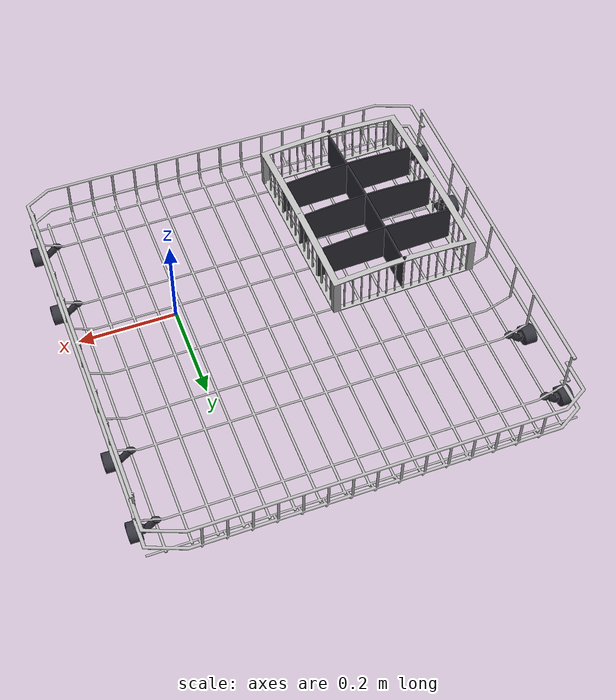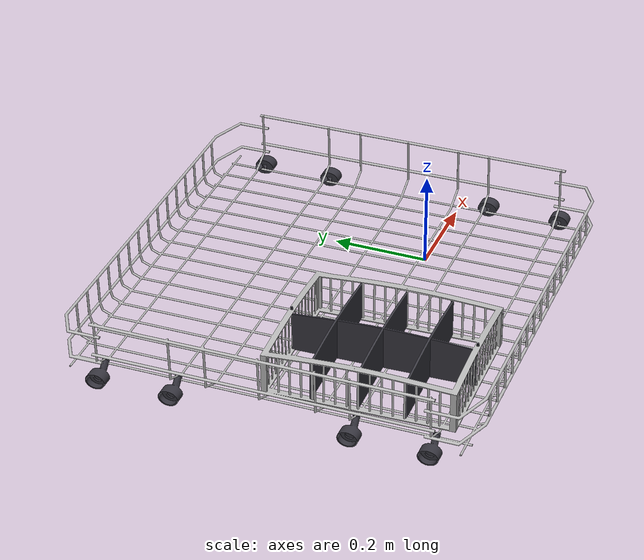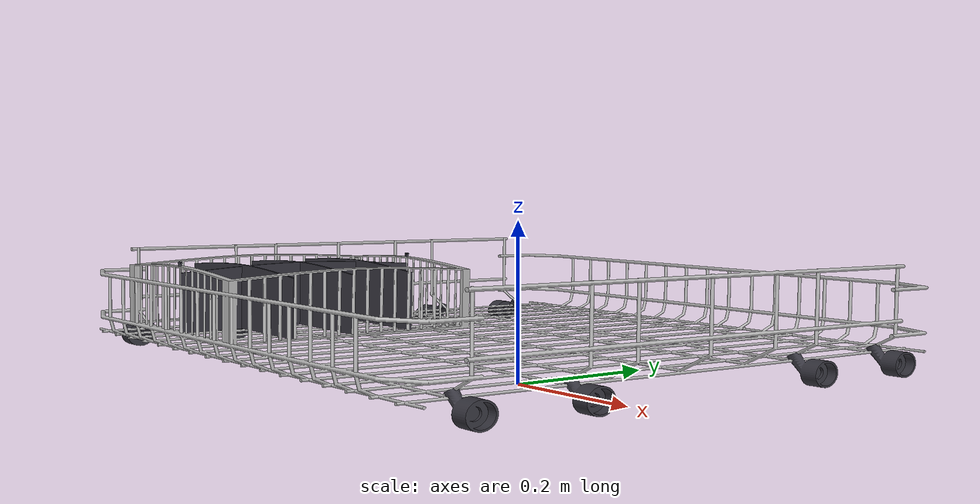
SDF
<?xml version="1.0" ?>
<sdf version="1.6">
  <model name="dish_washer">
    <link name="link">
      <pose>0 0 0 0 0 0</pose>  <!-- Initial pose (XYZ + RPY) -->

      <visual name="visual">
        <geometry>
          <mesh>
            <uri>model://dish_washer_simulation/meshes/model.dae</uri>
            <scale>0.024 0.020 0.016</scale>
          </mesh>
        </geometry>
      </visual>

      <collision name="collision">
        <laser_retro>0</laser_retro>
        <max_contacts>20</max_contacts>
        <geometry>
          <mesh>
            <uri>model://dish_washer_simulation/meshes/model.dae</uri>
            <scale>0.024 0.020 0.016</scale>
          </mesh>
        </geometry>
        <surface>
          <contact>
            <ode>
              <kp>1e7</kp>
              <kd>1.0</kd>
              <max_vel>0.2</max_vel>
              <min_depth>0.5</min_depth>
            </ode>
          </contact>
          <friction>
            <ode>
              <mu>0.6</mu>
              <mu2>0.6</mu2>
            </ode>
          </friction>
        </surface>
      </collision>
    </link>

    <inertial auto="true">
    </inertial>

    <allow_auto_disable>1</allow_auto_disable>
    <static>1</static>  <!-- Set to 1 if the object should not fall -->

  </model>
</sdf>
